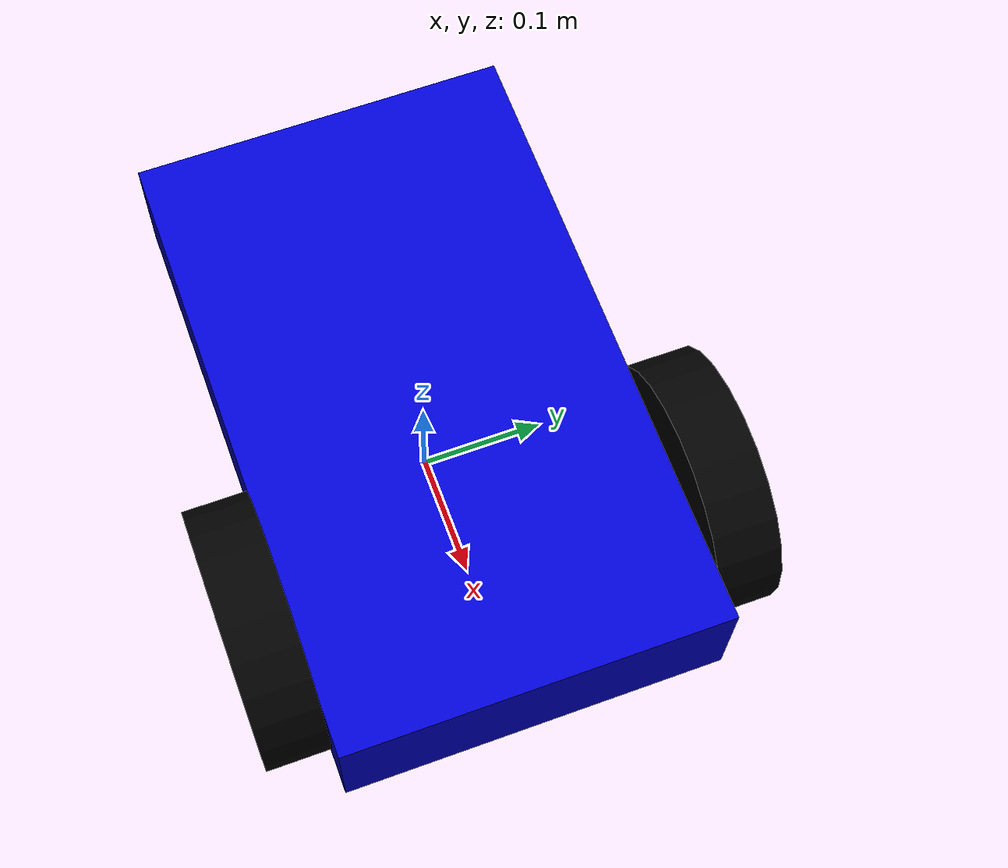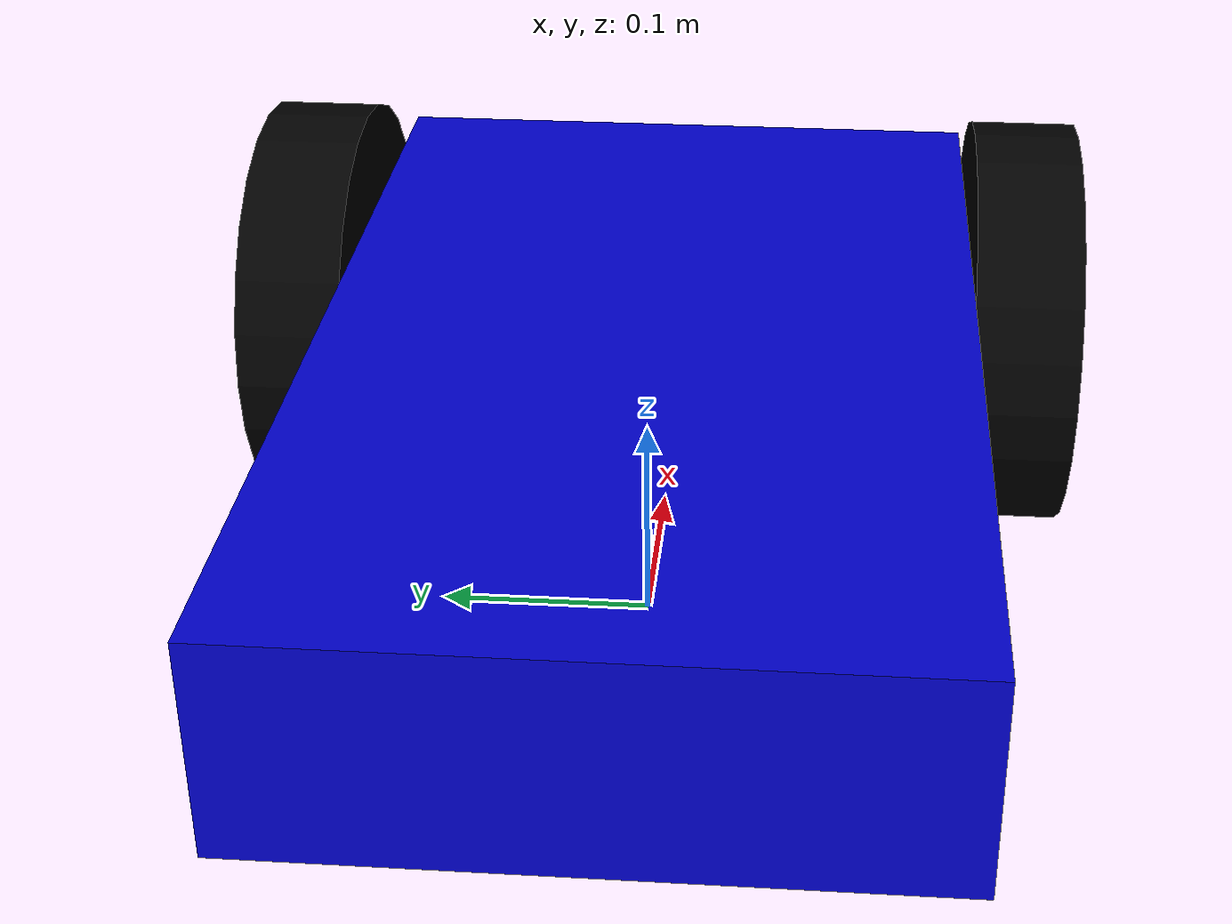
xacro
<?xml version="1.0"?>
<robot xmlns:xacro="http://www.ros.org/wiki/xacro" name="diff_drive_robot">

    <!-- Properties -->
    <xacro:property name="base_width" value="0.3"/>
    <xacro:property name="base_length" value="0.5"/>
    <xacro:property name="base_height" value="0.1"/>

    <xacro:property name="wheel_radius" value="0.1"/>
    <xacro:property name="wheel_width" value="0.05"/>
    <xacro:property name="wheel_separation" value="0.35"/>

    <xacro:property name="base_mass" value="5.0"/>
    <xacro:property name="wheel_mass" value="1.0"/>

    <!-- Import Gazebo customizations -->
    <xacro:include filename="$(find diff_drive_robot)/urdf/diff_drive.gazebo"/>

    <!-- Base Link -->
    <link name="base_footprint"/>

    <joint name="base_joint" type="fixed">
        <parent link="base_footprint"/>
        <child link="base_link"/>
        <origin xyz="0 0 ${wheel_radius}" rpy="0 0 0"/>
    </joint>

    <link name="base_link">
        <collision>
            <origin xyz="0 0 0" rpy="0 0 0"/>
            <geometry>
                <box size="${base_length} ${base_width} ${base_height}"/>
            </geometry>
        </collision>

        <visual>
            <origin xyz="0 0 0" rpy="0 0 0"/>
            <geometry>
                <box size="${base_length} ${base_width} ${base_height}"/>
            </geometry>
            <material name="blue"/>
        </visual>

        <inertial>
            <origin xyz="0 0 0" rpy="0 0 0"/>
            <mass value="${base_mass}"/>
            <inertia
                ixx="${base_mass * (base_width * base_width + base_height * base_height) / 12.0}"
                ixy="0.0"
                ixz="0.0"
                iyy="${base_mass * (base_length * base_length + base_height * base_height) / 12.0}"
                iyz="0.0"
                izz="${base_mass * (base_length * base_length + base_width * base_width) / 12.0}"/>
        </inertial>
    </link>

    <!-- Wheel Macro -->
    <xacro:macro name="wheel" params="prefix x_reflect y_reflect">
        <link name="${prefix}_wheel">
            <collision>
                <origin xyz="0 0 0" rpy="${pi/2} 0 0"/>
                <geometry>
                    <cylinder radius="${wheel_radius}" length="${wheel_width}"/>
                </geometry>
            </collision>

            <visual>
                <origin xyz="0 0 0" rpy="${pi/2} 0 0"/>
                <geometry>
                    <cylinder radius="${wheel_radius}" length="${wheel_width}"/>
                </geometry>
                <material name="black"/>
            </visual>

            <inertial>
                <origin xyz="0 0 0" rpy="${pi/2} 0 0"/>
                <mass value="${wheel_mass}"/>
                <inertia
                    ixx="${wheel_mass * (3 * wheel_radius * wheel_radius + wheel_width * wheel_width) / 12}"
                    ixy="0.0"
                    ixz="0.0"
                    iyy="${wheel_mass * (3 * wheel_radius * wheel_radius + wheel_width * wheel_width) / 12}"
                    iyz="0.0"
                    izz="${wheel_mass * wheel_radius * wheel_radius / 2}"/>
            </inertial>
        </link>

        <joint name="${prefix}_wheel_joint" type="continuous">
            <parent link="base_link"/>
            <child link="${prefix}_wheel"/>
            <origin xyz="${x_reflect*base_length/4} ${y_reflect*wheel_separation/2} 0" rpy="0 0 0"/>
            <axis xyz="0 1 0"/>
            <dynamics damping="0.1"/>
        </joint>
    </xacro:macro>

    <!-- Create wheels -->
    <xacro:wheel prefix="left" x_reflect="1" y_reflect="1" />
    <xacro:wheel prefix="right" x_reflect="1" y_reflect="-1" />

    <!-- Materials -->
    <material name="black">
        <color rgba="0 0 0 1"/>
    </material>

    <material name="blue">
        <color rgba="0 0 0.8 1"/>
    </material>

</robot>
